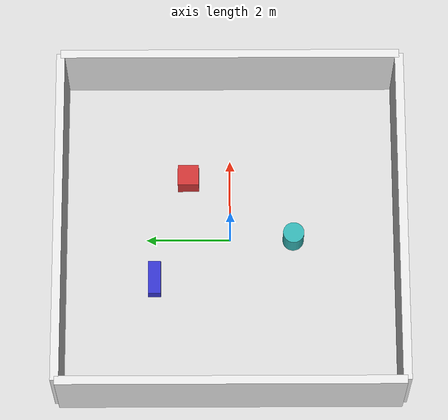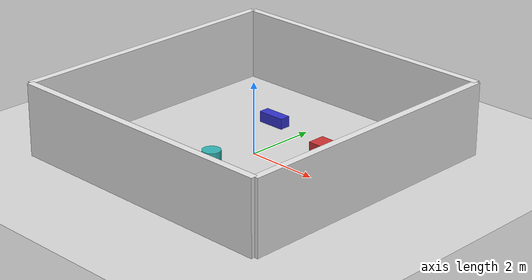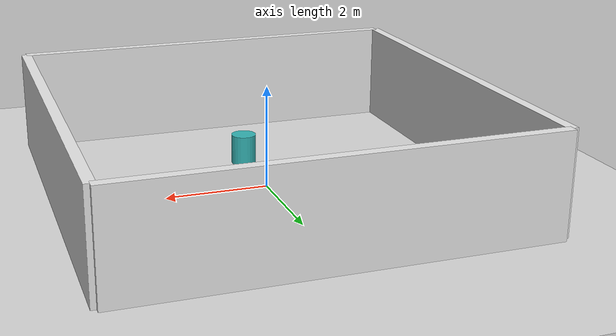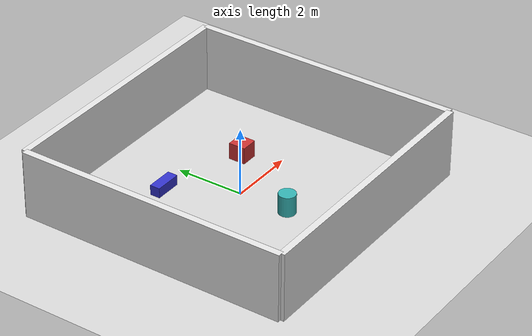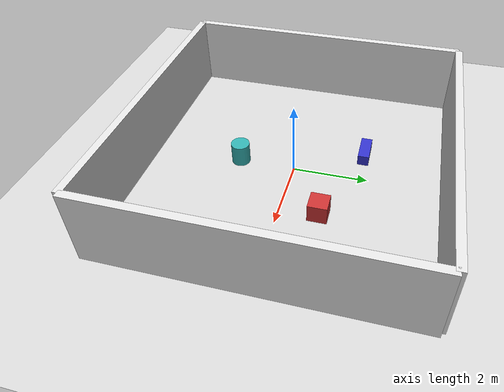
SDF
<?xml version="1.0" ?>
<sdf version="1.10">
  <world name="rovi_room">
    <physics name="1ms" type="ignored">
      <max_step_size>0.001</max_step_size>
      <real_time_factor>1.0</real_time_factor>
    </physics>

    <plugin filename="gz-sim-physics-system" name="gz::sim::systems::Physics"/>
    <plugin filename="gz-sim-user-commands-system" name="gz::sim::systems::UserCommands"/>
    <plugin filename="gz-sim-sensors-system" name="gz::sim::systems::Sensors">
      <render_engine>ogre2</render_engine>
    </plugin>
    <plugin filename="gz-sim-imu-system" name="gz::sim::systems::Imu"/>
    <plugin filename="gz-sim-scene-broadcaster-system" name="gz::sim::systems::SceneBroadcaster"/>

    <light type="directional" name="sun">
      <cast_shadows>true</cast_shadows>
      <pose>0 0 10 0 0 0</pose>
      <diffuse>1 1 1 1</diffuse>
      <specular>0.2 0.2 0.2 1</specular>
      <attenuation>
        <range>1000</range>
        <constant>0.9</constant>
        <linear>0.01</linear>
        <quadratic>0.001</quadratic>
      </attenuation>
      <direction>-0.5 0.1 -0.9</direction>
    </light>

    <model name="ground_plane">
      <static>true</static>
      <link name="link">
        <collision name="collision">
          <geometry>
            <plane>
              <normal>0 0 1</normal>
              <size>50 50</size>
            </plane>
          </geometry>
        </collision>
        <visual name="visual">
          <geometry>
            <plane>
              <normal>0 0 1</normal>
              <size>50 50</size>
            </plane>
          </geometry>
          <material>
            <ambient>0.85 0.85 0.85 1</ambient>
            <diffuse>0.85 0.85 0.85 1</diffuse>
          </material>
        </visual>
      </link>
    </model>

    <!-- Simple 8m x 8m room walls -->
    <model name="wall_north">
      <static>true</static>
      <pose>0 4 1 0 0 0</pose>
      <link name="link">
        <collision name="collision">
          <geometry><box><size>8 0.2 2</size></box></geometry>
        </collision>
        <visual name="visual">
          <geometry><box><size>8 0.2 2</size></box></geometry>
          <material><diffuse>0.9 0.9 0.9 1</diffuse></material>
        </visual>
      </link>
    </model>
    <model name="wall_south">
      <static>true</static>
      <pose>0 -4 1 0 0 0</pose>
      <link name="link">
        <collision name="collision">
          <geometry><box><size>8 0.2 2</size></box></geometry>
        </collision>
        <visual name="visual">
          <geometry><box><size>8 0.2 2</size></box></geometry>
          <material><diffuse>0.9 0.9 0.9 1</diffuse></material>
        </visual>
      </link>
    </model>
    <model name="wall_east">
      <static>true</static>
      <pose>4 0 1 0 0 0</pose>
      <link name="link">
        <collision name="collision">
          <geometry><box><size>0.2 8 2</size></box></geometry>
        </collision>
        <visual name="visual">
          <geometry><box><size>0.2 8 2</size></box></geometry>
          <material><diffuse>0.9 0.9 0.9 1</diffuse></material>
        </visual>
      </link>
    </model>
    <model name="wall_west">
      <static>true</static>
      <pose>-4 0 1 0 0 0</pose>
      <link name="link">
        <collision name="collision">
          <geometry><box><size>0.2 8 2</size></box></geometry>
        </collision>
        <visual name="visual">
          <geometry><box><size>0.2 8 2</size></box></geometry>
          <material><diffuse>0.9 0.9 0.9 1</diffuse></material>
        </visual>
      </link>
    </model>

    <!-- A couple of obstacles for LiDAR + Nav2 -->
    <model name="obstacle_box_1">
      <static>true</static>
      <pose>1.5 1.0 0.25 0 0 0</pose>
      <link name="link">
        <collision name="collision">
          <geometry><box><size>0.5 0.5 0.5</size></box></geometry>
        </collision>
        <visual name="visual">
          <geometry><box><size>0.5 0.5 0.5</size></box></geometry>
          <material><diffuse>0.8 0.2 0.2 1</diffuse></material>
        </visual>
      </link>
    </model>
    <model name="obstacle_box_2">
      <static>true</static>
      <pose>-1.0 1.8 0.15 0 0 0</pose>
      <link name="link">
        <collision name="collision">
          <geometry><box><size>0.8 0.3 0.3</size></box></geometry>
        </collision>
        <visual name="visual">
          <geometry><box><size>0.8 0.3 0.3</size></box></geometry>
          <material><diffuse>0.2 0.2 0.8 1</diffuse></material>
        </visual>
      </link>
    </model>
    <model name="obstacle_cylinder">
      <static>true</static>
      <pose>0.0 -1.5 0.3 0 0 0</pose>
      <link name="link">
        <collision name="collision">
          <geometry><cylinder><radius>0.25</radius><length>0.6</length></cylinder></geometry>
        </collision>
        <visual name="visual">
          <geometry><cylinder><radius>0.25</radius><length>0.6</length></cylinder></geometry>
          <material><diffuse>0.2 0.7 0.7 1</diffuse></material>
        </visual>
      </link>
    </model>
  </world>
</sdf>
